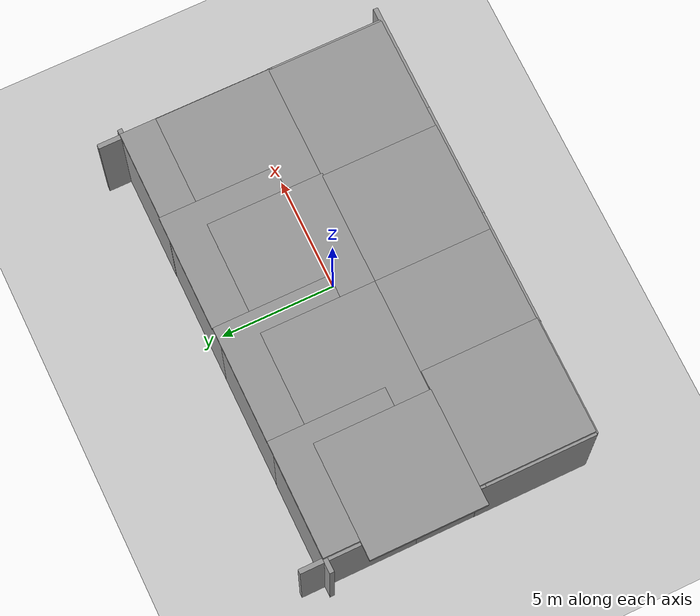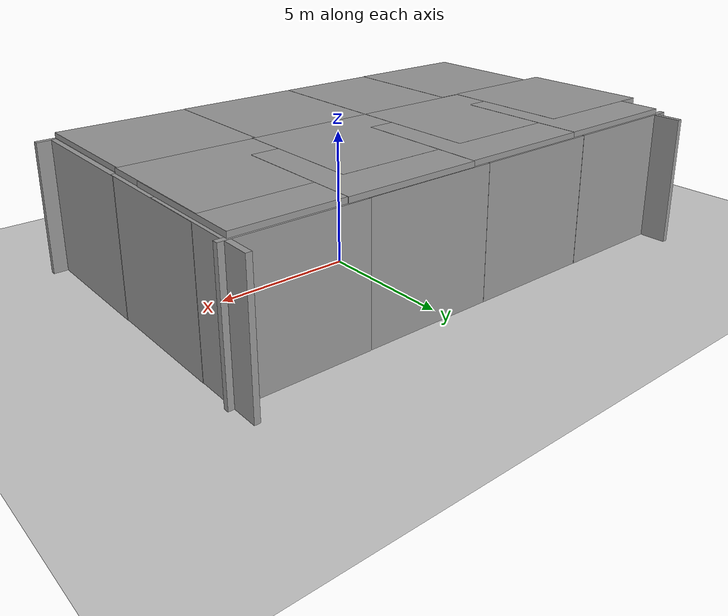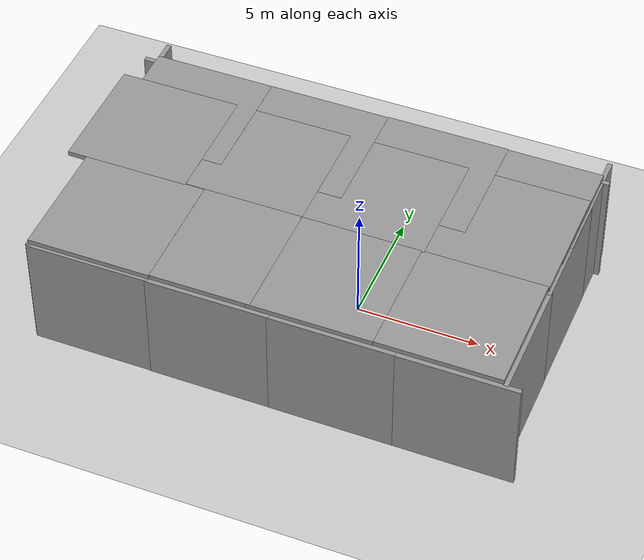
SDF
<sdf version="1.7">
 <world name="default">
  <light name="sun" type="directional">
   <pose>0 0 10 0 -0 0</pose>
   <diffuse>0.8 0.8 0.8 1</diffuse>
   <specular>0.2 0.2 0.2 1</specular>
   <attenuation>
    <range>1000</range>
    <constant>0.9</constant>
    <linear>0.01</linear>
    <quadratic>0.001</quadratic>
   </attenuation>
   <direction>-0.5 0.1 -0.9</direction>
   <spot><inner_angle>0</inner_angle><outer_angle>0</outer_angle><falloff>0</falloff></spot>
  </light>
  <plugin name="ros_interface_plugin" filename="librotors_gazebo_ros_interface_plugin.so"/>
  <gravity>0 0 -9.8</gravity>
  <magnetic_field>6e-06 2.3e-05 -4.2e-05</magnetic_field>
  <atmosphere type="adiabatic"/>
  <physics type="ode">
   <max_step_size>0.004</max_step_size>
   <real_time_factor>2</real_time_factor>
   <real_time_update_rate>1000</real_time_update_rate>
  </physics>
  <scene><ambient>0.4 0.4 0.4 1</ambient><background>0.7 0.7 0.7 1</background><shadows>1</shadows></scene>
  <spherical_coordinates>
   <surface_model>EARTH_WGS84</surface_model>
   <latitude_deg>0</latitude_deg>
   <longitude_deg>0</longitude_deg>
   <elevation>0</elevation>
   <heading_deg>0</heading_deg>
  </spherical_coordinates>
  <model name="grey_wall">
   <static>1</static>
   <link name="link">
    <pose>0 0 0 1.57 -0 1.57</pose>
    <collision name="collision"><geometry><box><size>5 0.2 5</size></box></geometry></collision>
    <visual name="visual">
     <cast_shadows>0</cast_shadows>
     <geometry><box><size>5 0.2 5</size></box></geometry>
     <material>
      <script>
       <uri>model://grey_wall/materials/scripts</uri>
       <uri>model://grey_wall/materials/textures</uri>
       <name>vrc/grey_wall</name>
      </script>
     </material>
    </visual>
   </link>
   <pose>-11.0162 -3.43213 2.38952 0.00041 1.57 0.000414</pose>
  </model>
  <model name="grey_wall_clone">
   <static>1</static>
   <link name="link">
    <pose>0 0 0 1.57 -0 1.57</pose>
    <collision name="collision"><geometry><box><size>5 0.2 5</size></box></geometry></collision>
    <visual name="visual">
     <cast_shadows>0</cast_shadows>
     <geometry><box><size>5 0.2 5</size></box></geometry>
     <material>
      <script>
       <uri>model://grey_wall/materials/scripts</uri>
       <uri>model://grey_wall/materials/textures</uri>
       <name>vrc/grey_wall</name>
      </script>
     </material>
    </visual>
   </link>
   <pose>-11.0072 1.30633 2.38953 0.00041 1.57 0.000414</pose>
  </model>
  <model name="grey_wall_clone_0">
   <static>1</static>
   <link name="link">
    <pose>0 0 0 1.57 -0 1.57</pose>
    <collision name="collision"><geometry><box><size>5 0.2 5</size></box></geometry></collision>
    <visual name="visual">
     <cast_shadows>0</cast_shadows>
     <geometry><box><size>5 0.2 5</size></box></geometry>
     <material>
      <script>
       <uri>model://grey_wall/materials/scripts</uri>
       <uri>model://grey_wall/materials/textures</uri>
       <name>vrc/grey_wall</name>
      </script>
     </material>
    </visual>
   </link>
   <pose>7.87979 -3.39852 2.39072 0.00041 1.57 0.000414</pose>
  </model>
  <model name="grey_wall_clone_1">
   <static>1</static>
   <link name="link">
    <pose>0 0 0 1.57 -0 1.57</pose>
    <collision name="collision"><geometry><box><size>5 0.2 5</size></box></geometry></collision>
    <visual name="visual">
     <cast_shadows>0</cast_shadows>
     <geometry><box><size>5 0.2 5</size></box></geometry>
     <material>
      <script>
       <uri>model://grey_wall/materials/scripts</uri>
       <uri>model://grey_wall/materials/textures</uri>
       <name>vrc/grey_wall</name>
      </script>
     </material>
    </visual>
   </link>
   <pose>7.86496 1.43931 2.39072 0.00041 1.57 0.000414</pose>
  </model>
  <model name="grey_wall_clone_2">
   <static>1</static>
   <link name="link">
    <pose>0 0 0 1.57 -0 1.57</pose>
    <collision name="collision"><geometry><box><size>5 0.2 5</size></box></geometry></collision>
    <visual name="visual">
     <cast_shadows>0</cast_shadows>
     <geometry><box><size>5 0.2 5</size></box></geometry>
     <material>
      <script>
       <uri>model://grey_wall/materials/scripts</uri>
       <uri>model://grey_wall/materials/textures</uri>
       <name>vrc/grey_wall</name>
      </script>
     </material>
    </visual>
   </link>
   <pose>5.66151 5.51118 2.39072 0.00041 1.57 1.57041</pose>
  </model>
  <model name="grey_wall_clone_2_clone">
   <static>1</static>
   <link name="link">
    <pose>0 0 0 1.57 -0 1.57</pose>
    <collision name="collision"><geometry><box><size>5 0.2 5</size></box></geometry></collision>
    <visual name="visual">
     <cast_shadows>0</cast_shadows>
     <geometry><box><size>5 0.2 5</size></box></geometry>
     <material>
      <script>
       <uri>model://grey_wall/materials/scripts</uri>
       <uri>model://grey_wall/materials/textures</uri>
       <name>vrc/grey_wall</name>
      </script>
     </material>
    </visual>
   </link>
   <pose>0.706375 5.50475 2.39072 0.00041 1.57 1.5704</pose>
  </model>
  <model name="grey_wall_clone_2_clone_0">
   <static>1</static>
   <link name="link">
    <pose>0 0 0 1.57 -0 1.57</pose>
    <collision name="collision"><geometry><box><size>5 0.2 5</size></box></geometry></collision>
    <visual name="visual">
     <cast_shadows>0</cast_shadows>
     <geometry><box><size>5 0.2 5</size></box></geometry>
     <material>
      <script>
       <uri>model://grey_wall/materials/scripts</uri>
       <uri>model://grey_wall/materials/textures</uri>
       <name>vrc/grey_wall</name>
      </script>
     </material>
    </visual>
   </link>
   <pose>-4.24169 5.51283 2.39072 0.00041 1.57 1.5704</pose>
  </model>
  <model name="grey_wall_clone_2_clone_1">
   <static>1</static>
   <link name="link">
    <pose>0 0 0 1.57 -0 1.57</pose>
    <collision name="collision"><geometry><box><size>5 0.2 5</size></box></geometry></collision>
    <visual name="visual">
     <cast_shadows>0</cast_shadows>
     <geometry><box><size>5 0.2 5</size></box></geometry>
     <material>
      <script>
       <uri>model://grey_wall/materials/scripts</uri>
       <uri>model://grey_wall/materials/textures</uri>
       <name>vrc/grey_wall</name>
      </script>
     </material>
    </visual>
   </link>
   <pose>-9.07127 5.5239 2.39173 0.00041 1.57 1.5704</pose>
  </model>
  <model name="grey_wall_clone_2_clone_2">
   <static>1</static>
   <link name="link">
    <pose>0 0 0 1.57 -0 1.57</pose>
    <collision name="collision"><geometry><box><size>5 0.2 5</size></box></geometry></collision>
    <visual name="visual">
     <cast_shadows>0</cast_shadows>
     <geometry><box><size>5 0.2 5</size></box></geometry>
     <material>
      <script>
       <uri>model://grey_wall/materials/scripts</uri>
       <uri>model://grey_wall/materials/textures</uri>
       <name>vrc/grey_wall</name>
      </script>
     </material>
    </visual>
   </link>
   <pose>-8.56415 -5.89837 2.38969 0.00041 1.57 1.5704</pose>
  </model>
  <model name="grey_wall_clone_2_clone_3">
   <static>1</static>
   <link name="link">
    <pose>0 0 0 1.57 -0 1.57</pose>
    <collision name="collision"><geometry><box><size>5 0.2 5</size></box></geometry></collision>
    <visual name="visual">
     <cast_shadows>0</cast_shadows>
     <geometry><box><size>5 0.2 5</size></box></geometry>
     <material>
      <script>
       <uri>model://grey_wall/materials/scripts</uri>
       <uri>model://grey_wall/materials/textures</uri>
       <name>vrc/grey_wall</name>
      </script>
     </material>
    </visual>
   </link>
   <pose>-3.66933 -5.92046 2.38966 0.00041 1.57 1.5704</pose>
  </model>
  <model name="grey_wall_clone_2_clone_4">
   <static>1</static>
   <link name="link">
    <pose>0 0 0 1.57 -0 1.57</pose>
    <collision name="collision"><geometry><box><size>5 0.2 5</size></box></geometry></collision>
    <visual name="visual">
     <cast_shadows>0</cast_shadows>
     <geometry><box><size>5 0.2 5</size></box></geometry>
     <material>
      <script>
       <uri>model://grey_wall/materials/scripts</uri>
       <uri>model://grey_wall/materials/textures</uri>
       <name>vrc/grey_wall</name>
      </script>
     </material>
    </visual>
   </link>
   <pose>1.22364 -5.92953 2.39072 0.00041 1.57 1.5704</pose>
  </model>
  <model name="grey_wall_clone_2_clone_5">
   <static>1</static>
   <link name="link">
    <pose>0 0 0 1.57 -0 1.57</pose>
    <collision name="collision"><geometry><box><size>5 0.2 5</size></box></geometry></collision>
    <visual name="visual">
     <cast_shadows>0</cast_shadows>
     <geometry><box><size>5 0.2 5</size></box></geometry>
     <material>
      <script>
       <uri>model://grey_wall/materials/scripts</uri>
       <uri>model://grey_wall/materials/textures</uri>
       <name>vrc/grey_wall</name>
      </script>
     </material>
    </visual>
   </link>
   <pose>5.99888 -5.93109 2.39072 0.00041 1.57 1.5704</pose>
  </model>
  <model name="grey_wall_0">
   <static>1</static>
   <link name="link">
    <pose>0 0 0 1.57 -0 1.57</pose>
    <collision name="collision"><geometry><box><size>5 0.2 5</size></box></geometry></collision>
    <visual name="visual">
     <cast_shadows>0</cast_shadows>
     <geometry><box><size>5 0.2 5</size></box></geometry>
     <material>
      <script>
       <uri>model://grey_wall/materials/scripts</uri>
       <uri>model://grey_wall/materials/textures</uri>
       <name>vrc/grey_wall</name>
      </script>
     </material>
    </visual>
   </link>
   <pose>-8.51664 -3.40635 5.02735 0 -0 0</pose>
  </model>
  <model name="grey_wall_0_clone">
   <static>1</static>
   <link name="link">
    <pose>0 0 0 1.57 -0 1.57</pose>
    <collision name="collision"><geometry><box><size>5 0.2 5</size></box></geometry></collision>
    <visual name="visual">
     <cast_shadows>0</cast_shadows>
     <geometry><box><size>5 0.2 5</size></box></geometry>
     <material>
      <script>
       <uri>model://grey_wall/materials/scripts</uri>
       <uri>model://grey_wall/materials/textures</uri>
       <name>vrc/grey_wall</name>
      </script>
     </material>
    </visual>
   </link>
   <pose>-9.31024 1.55837 5.02735 0 -0 0</pose>
  </model>
  <model name="grey_wall_0_clone_0">
   <static>1</static>
   <link name="link">
    <pose>0 0 0 1.57 -0 1.57</pose>
    <collision name="collision"><geometry><box><size>5 0.2 5</size></box></geometry></collision>
    <visual name="visual">
     <cast_shadows>0</cast_shadows>
     <geometry><box><size>5 0.2 5</size></box></geometry>
     <material>
      <script>
       <uri>model://grey_wall/materials/scripts</uri>
       <uri>model://grey_wall/materials/textures</uri>
       <name>vrc/grey_wall</name>
      </script>
     </material>
    </visual>
   </link>
   <pose>-4.47048 1.53424 5.02735 0 -0 0</pose>
  </model>
  <model name="grey_wall_0_clone_1">
   <static>1</static>
   <link name="link">
    <pose>0 0 0 1.57 -0 1.57</pose>
    <collision name="collision"><geometry><box><size>5 0.2 5</size></box></geometry></collision>
    <visual name="visual">
     <cast_shadows>0</cast_shadows>
     <geometry><box><size>5 0.2 5</size></box></geometry>
     <material>
      <script>
       <uri>model://grey_wall/materials/scripts</uri>
       <uri>model://grey_wall/materials/textures</uri>
       <name>vrc/grey_wall</name>
      </script>
     </material>
    </visual>
   </link>
   <pose>0.44823 1.55187 5.02735 0 -0 0</pose>
  </model>
  <model name="grey_wall_0_clone_2">
   <static>1</static>
   <link name="link">
    <pose>0 0 0 1.57 -0 1.57</pose>
    <collision name="collision"><geometry><box><size>5 0.2 5</size></box></geometry></collision>
    <visual name="visual">
     <cast_shadows>0</cast_shadows>
     <geometry><box><size>5 0.2 5</size></box></geometry>
     <material>
      <script>
       <uri>model://grey_wall/materials/scripts</uri>
       <uri>model://grey_wall/materials/textures</uri>
       <name>vrc/grey_wall</name>
      </script>
     </material>
    </visual>
   </link>
   <pose>5.35358 1.55314 5.02735 0 -0 0</pose>
  </model>
  <model name="grey_wall_0_clone_3">
   <static>1</static>
   <link name="link">
    <pose>0 0 0 1.57 -0 1.57</pose>
    <collision name="collision"><geometry><box><size>5 0.2 5</size></box></geometry></collision>
    <visual name="visual">
     <cast_shadows>0</cast_shadows>
     <geometry><box><size>5 0.2 5</size></box></geometry>
     <material>
      <script>
       <uri>model://grey_wall/materials/scripts</uri>
       <uri>model://grey_wall/materials/textures</uri>
       <name>vrc/grey_wall</name>
      </script>
     </material>
    </visual>
   </link>
   <pose>5.31034 -3.37584 5.02735 0 -0 0</pose>
  </model>
  <model name="grey_wall_0_clone_4">
   <static>1</static>
   <link name="link">
    <pose>0 0 0 1.57 -0 1.57</pose>
    <collision name="collision"><geometry><box><size>5 0.2 5</size></box></geometry></collision>
    <visual name="visual">
     <cast_shadows>0</cast_shadows>
     <geometry><box><size>5 0.2 5</size></box></geometry>
     <material>
      <script>
       <uri>model://grey_wall/materials/scripts</uri>
       <uri>model://grey_wall/materials/textures</uri>
       <name>vrc/grey_wall</name>
      </script>
     </material>
    </visual>
   </link>
   <pose>0.343399 -3.38822 5.02735 0 -0 0</pose>
  </model>
  <model name="grey_wall_0_clone_5">
   <static>1</static>
   <link name="link">
    <pose>0 0 0 1.57 -0 1.57</pose>
    <collision name="collision"><geometry><box><size>5 0.2 5</size></box></geometry></collision>
    <visual name="visual">
     <cast_shadows>0</cast_shadows>
     <geometry><box><size>5 0.2 5</size></box></geometry>
     <material>
      <script>
       <uri>model://grey_wall/materials/scripts</uri>
       <uri>model://grey_wall/materials/textures</uri>
       <name>vrc/grey_wall</name>
      </script>
     </material>
    </visual>
   </link>
   <pose>-4.47559 -3.38081 5.02735 0 -0 0</pose>
  </model>
  <model name="grey_wall_clone_1_clone">
   <static>1</static>
   <link name="link">
    <pose>0 0 0 1.57 -0 1.57</pose>
    <collision name="collision"><geometry><box><size>5 0.2 5</size></box></geometry></collision>
    <visual name="visual">
     <cast_shadows>0</cast_shadows>
     <geometry><box><size>5 0.2 5</size></box></geometry>
     <material>
      <script>
       <uri>model://grey_wall/materials/scripts</uri>
       <uri>model://grey_wall/materials/textures</uri>
       <name>vrc/grey_wall</name>
      </script>
     </material>
    </visual>
   </link>
   <pose>7.85309 4.08586 2.39072 0.00041 1.57 0.000414</pose>
  </model>
  <model name="grey_wall_clone_1_clone_0">
   <static>1</static>
   <link name="link">
    <pose>0 0 0 1.57 -0 1.57</pose>
    <collision name="collision"><geometry><box><size>5 0.2 5</size></box></geometry></collision>
    <visual name="visual">
     <cast_shadows>0</cast_shadows>
     <geometry><box><size>5 0.2 5</size></box></geometry>
     <material>
      <script>
       <uri>model://grey_wall/materials/scripts</uri>
       <uri>model://grey_wall/materials/textures</uri>
       <name>vrc/grey_wall</name>
      </script>
     </material>
    </visual>
   </link>
   <pose>-11.0101 4.13288 2.39072 0.00041 1.57 0.000414</pose>
  </model>
  <model name="grey_wall_0_clone_clone">
   <static>1</static>
   <link name="link">
    <pose>0 0 0 1.57 -0 1.57</pose>
    <collision name="collision"><geometry><box><size>5 0.2 5</size></box></geometry></collision>
    <visual name="visual">
     <cast_shadows>0</cast_shadows>
     <geometry><box><size>5 0.2 5</size></box></geometry>
     <material>
      <script>
       <uri>model://grey_wall/materials/scripts</uri>
       <uri>model://grey_wall/materials/textures</uri>
       <name>vrc/grey_wall</name>
      </script>
     </material>
    </visual>
   </link>
   <pose>-8.48775 3.11326 5.02735 0 -0 0</pose>
  </model>
  <model name="grey_wall_0_clone_clone_0">
   <static>1</static>
   <link name="link">
    <pose>0 0 0 1.57 -0 1.57</pose>
    <collision name="collision"><geometry><box><size>5 0.2 5</size></box></geometry></collision>
    <visual name="visual">
     <cast_shadows>0</cast_shadows>
     <geometry><box><size>5 0.2 5</size></box></geometry>
     <material>
      <script>
       <uri>model://grey_wall/materials/scripts</uri>
       <uri>model://grey_wall/materials/textures</uri>
       <name>vrc/grey_wall</name>
      </script>
     </material>
    </visual>
   </link>
   <pose>-3.49279 3.11523 5.02735 0 -0 0</pose>
  </model>
  <model name="grey_wall_0_clone_clone_1">
   <static>1</static>
   <link name="link">
    <pose>0 0 0 1.57 -0 1.57</pose>
    <collision name="collision"><geometry><box><size>5 0.2 5</size></box></geometry></collision>
    <visual name="visual">
     <cast_shadows>0</cast_shadows>
     <geometry><box><size>5 0.2 5</size></box></geometry>
     <material>
      <script>
       <uri>model://grey_wall/materials/scripts</uri>
       <uri>model://grey_wall/materials/textures</uri>
       <name>vrc/grey_wall</name>
      </script>
     </material>
    </visual>
   </link>
   <pose>1.50383 3.14198 5.02735 0 -0 0</pose>
  </model>
  <model name="grey_wall_0_clone_clone_2">
   <static>1</static>
   <link name="link">
    <pose>0 0 0 1.57 -0 1.57</pose>
    <collision name="collision"><geometry><box><size>5 0.2 5</size></box></geometry></collision>
    <visual name="visual">
     <cast_shadows>0</cast_shadows>
     <geometry><box><size>5 0.2 5</size></box></geometry>
     <material>
      <script>
       <uri>model://grey_wall/materials/scripts</uri>
       <uri>model://grey_wall/materials/textures</uri>
       <name>vrc/grey_wall</name>
      </script>
     </material>
    </visual>
   </link>
   <pose>5.37363 3.1102 5.02735 0 -0 0</pose>
  </model>
  <model name="ground_plane">
   <static>1</static>
   <link name="link">
    <collision name="collision">
     <geometry><plane><normal>0 0 1</normal><size>100 100</size></plane></geometry>
     <surface>
      <contact><collide_bitmask>65535</collide_bitmask></contact>
      <friction><ode><mu>100</mu><mu2>50</mu2></ode></friction>
     </surface>
    </collision>
    <visual name="visual">
     <cast_shadows>0</cast_shadows>
     <geometry><plane><normal>0 0 1</normal><size>100 100</size></plane></geometry>
     <material>
      <script><uri>file://media/materials/scripts/gazebo.material</uri><name>Gazebo/Grey</name></script>
     </material>
    </visual>
   </link>
   <pose>-3.9003 -0.227593 0 0 -0 0</pose>
  </model>
 </world>
</sdf>
